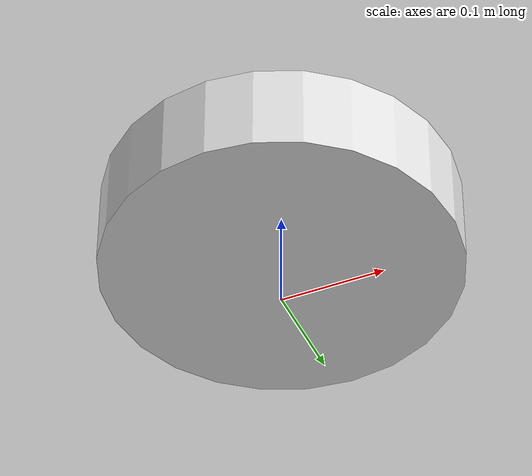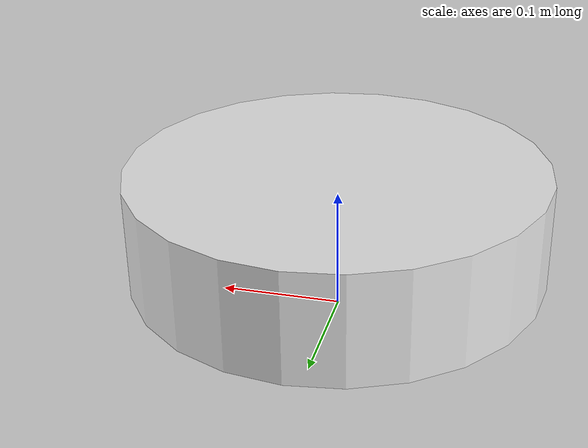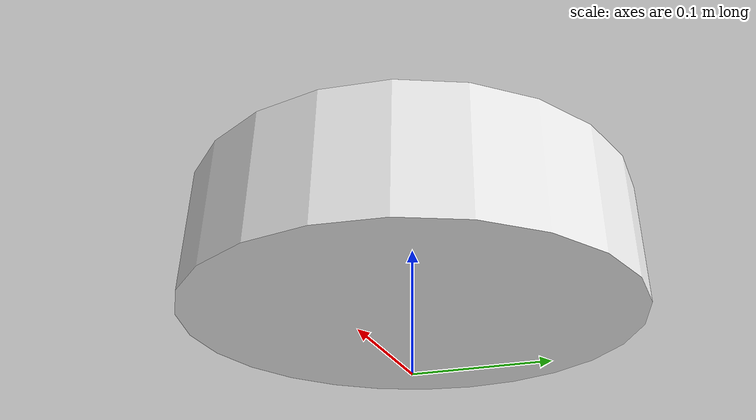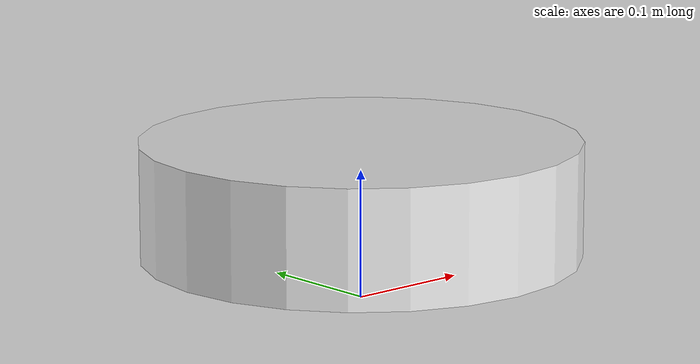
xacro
<?xml version="1.0"?>
<!-- QuickBot URDF: Create 2 base + Pi 5 + D455 mount.
     Frames per docs/architecture.md.  Geometry is intentionally rough — refine
     once the real chassis is measured. -->
<robot name="quickbot" xmlns:xacro="http://www.ros.org/wiki/xacro">

  <xacro:property name="base_radius" value="0.17"/>      <!-- Create 2 is ~34 cm diameter -->
  <xacro:property name="base_height" value="0.09"/>
  <xacro:property name="wheel_separation" value="0.235"/>

  <xacro:property name="camera_x" value="0.10"/>          <!-- D455 forward offset from base center -->
  <xacro:property name="camera_z" value="0.18"/>          <!-- D455 height above floor -->
  <xacro:property name="camera_pitch" value="0.0"/>       <!-- tilt forward (rad), set positive for downward -->

  <link name="base_footprint"/>

  <link name="base_link">
    <visual>
      <geometry>
        <cylinder radius="${base_radius}" length="${base_height}"/>
      </geometry>
      <origin xyz="0 0 ${base_height/2}" rpy="0 0 0"/>
      <material name="create_white">
        <color rgba="0.9 0.9 0.9 1"/>
      </material>
    </visual>
    <collision>
      <geometry>
        <cylinder radius="${base_radius}" length="${base_height}"/>
      </geometry>
      <origin xyz="0 0 ${base_height/2}" rpy="0 0 0"/>
    </collision>
  </link>

  <joint name="base_footprint_to_base_link" type="fixed">
    <parent link="base_footprint"/>
    <child link="base_link"/>
    <origin xyz="0 0 0.034" rpy="0 0 0"/>  <!-- wheel radius -->
  </joint>

  <link name="camera_link"/>
  <joint name="base_link_to_camera_link" type="fixed">
    <parent link="base_link"/>
    <child link="camera_link"/>
    <origin xyz="${camera_x} 0 ${camera_z}" rpy="0 ${camera_pitch} 0"/>
  </joint>

  <!-- RealSense optical frame conventions: x right, y down, z forward. -->
  <link name="camera_depth_optical_frame"/>
  <joint name="camera_link_to_depth_optical" type="fixed">
    <parent link="camera_link"/>
    <child link="camera_depth_optical_frame"/>
    <origin xyz="0 0 0" rpy="-1.5707963 0 -1.5707963"/>
  </joint>

</robot>
